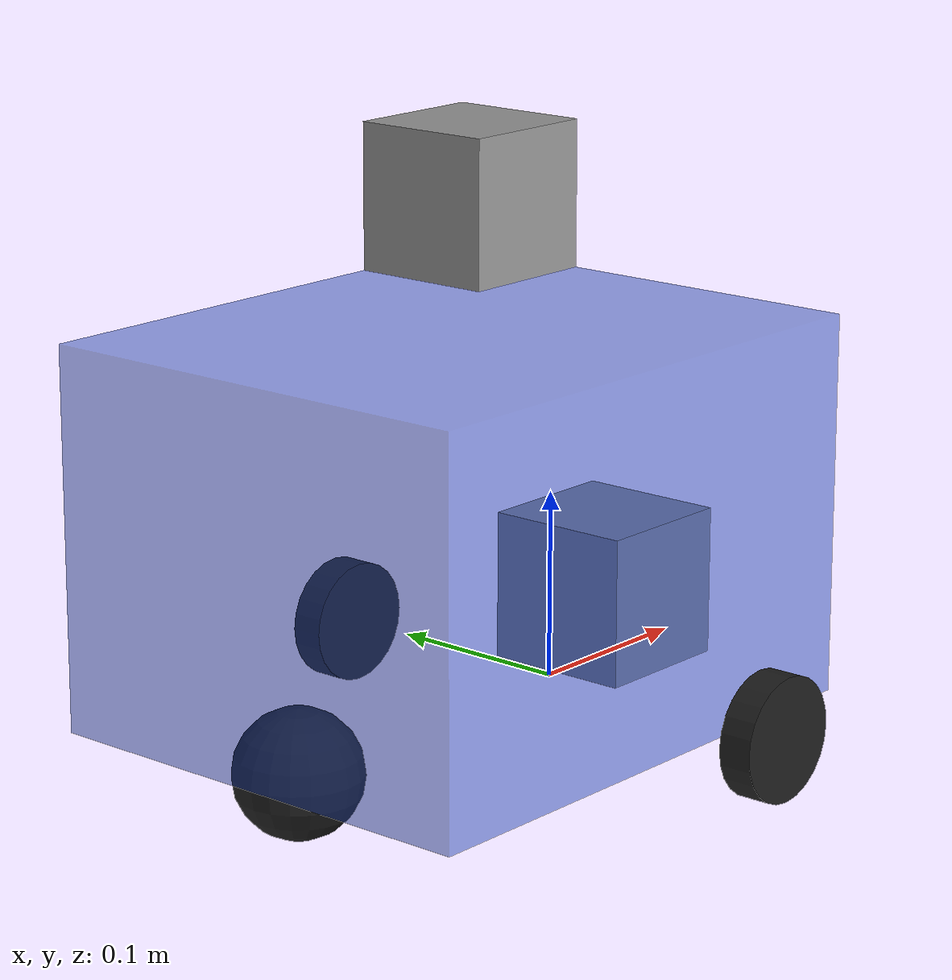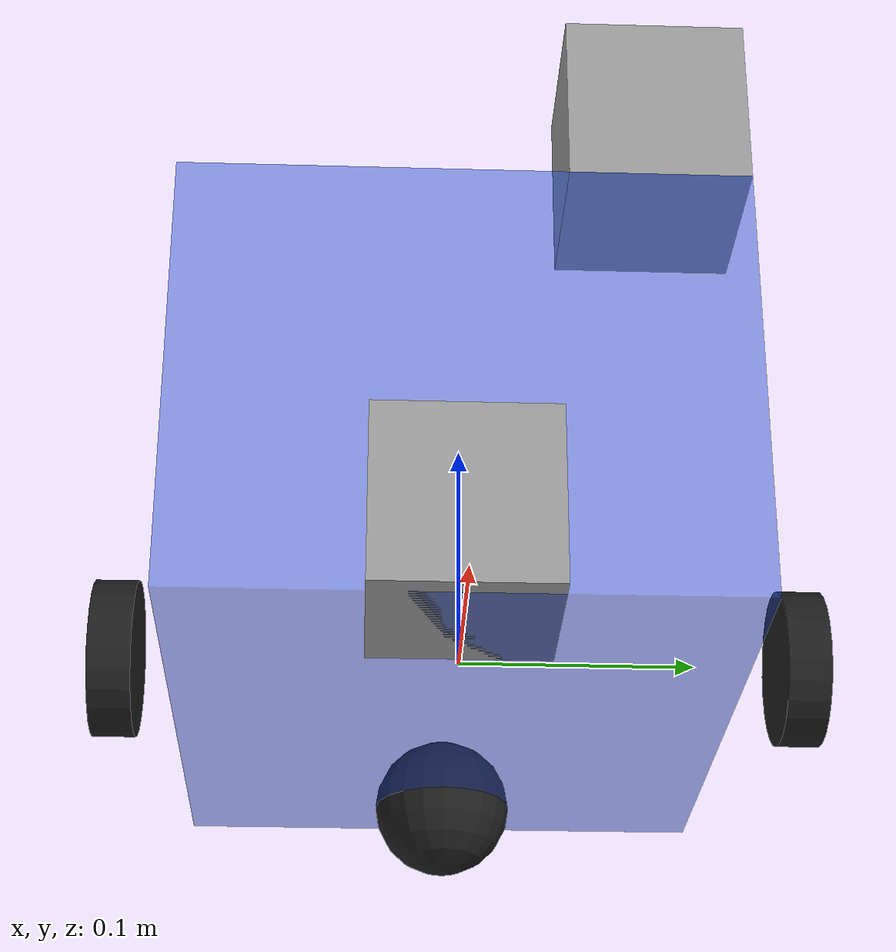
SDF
<sdf version='1.7'>
  <model name='simple_robot'>
    <link name='base_link'>
      <inertial>
        <pose>-0.051076 0.009526 0.02949 0 -0 0</pose>
        <mass>1.245</mass>
        <inertia>
          <ixx>0.0177944</ixx>
          <ixy>-0.00103094</ixy>
          <ixz>-0.00338644</ixz>
          <iyy>0.0227952</iyy>
          <iyz>-0.00252689</iyz>
          <izz>0.018595</izz>
        </inertia>
      </inertial>
      <collision name='base_link_fixed_joint_lump__chassis_collision'>
        <pose>-0.075 0 0.1 0 -0 0</pose>
        <geometry>
          <box>
            <size>0.3 0.25 0.2</size>
          </box>
        </geometry>
        <surface>
          <contact>
            <ode/>
          </contact>
          <friction>
            <ode/>
          </friction>
        </surface>
      </collision>
      <collision name='base_link_fixed_joint_lump__camera_link_collision_1'>
        <pose>0.035 0.085 0.24 0 -0 0</pose>
        <geometry>
          <box>
            <size>0.08 0.08 0.08</size>
          </box>
        </geometry>
        <surface>
          <contact>
            <ode/>
          </contact>
          <friction>
            <ode/>
          </friction>
        </surface>
      </collision>
      <collision name='base_link_fixed_joint_lump__camera_rgb_optical_frame_collision_2'>
        <pose>0.038 0.096 0.249 0 -0 0</pose>
        <geometry>
          <box>
            <size>0.01 0.01 0.01</size>
          </box>
        </geometry>
        <surface>
          <contact>
            <ode/>
          </contact>
          <friction>
            <ode/>
          </friction>
        </surface>
      </collision>
      <collision name='base_link_fixed_joint_lump__base_scan_collision_3'>
        <pose>0.045 0 0.04 0 -0 0</pose>
        <geometry>
          <box>
            <size>0.08 0.08 0.08</size>
          </box>
        </geometry>
        <surface>
          <contact>
            <ode/>
          </contact>
          <friction>
            <ode/>
          </friction>
        </surface>
      </collision>
      <collision name='base_link_fixed_joint_lump__castor_link_collision_4'>
        <pose>-0.192 0 0 0 -0 0</pose>
        <geometry>
          <sphere>
            <radius>0.033</radius>
          </sphere>
        </geometry>
        <surface>
          <contact>
            <ode/>
          </contact>
          <friction>
            <ode/>
          </friction>
        </surface>
      </collision>
      <visual name='base_link_fixed_joint_lump__chassis_visual'>
        <pose>-0.075 0 0.1 0 -0 0</pose>
        <geometry>
          <box>
            <size>0.3 0.25 0.2</size>
          </box>
        </geometry>
        <material>
          <script>
            <name>Gazebo/BlueTransparent</name>
            <uri>file://media/materials/scripts/gazebo.material</uri>
          </script>
        </material>
      </visual>
      <visual name='base_link_fixed_joint_lump__camera_link_visual_1'>
        <pose>0.035 0.085 0.24 0 -0 0</pose>
        <geometry>
          <box>
            <size>0.08 0.08 0.08</size>
          </box>
        </geometry>
        <material>
          <script>
            <name>Gazebo/Grey</name>
            <uri>file://media/materials/scripts/gazebo.material</uri>
          </script>
        </material>
      </visual>
      <visual name='base_link_fixed_joint_lump__camera_rgb_optical_frame_visual_2'>
        <pose>0.038 0.096 0.249 0 -0 0</pose>
        <geometry>
          <box>
            <size>0.01 0.01 0.01</size>
          </box>
        </geometry>
      </visual>
      <visual name='base_link_fixed_joint_lump__base_scan_visual_3'>
        <pose>0.045 0 0.04 0 -0 0</pose>
        <geometry>
          <box>
            <size>0.08 0.08 0.08</size>
          </box>
        </geometry>
        <material>
          <script>
            <name>Gazebo/Grey</name>
            <uri>file://media/materials/scripts/gazebo.material</uri>
          </script>
        </material>
      </visual>
      <visual name='base_link_fixed_joint_lump__castor_link_visual_4'>
        <pose>-0.192 0 0 0 -0 0</pose>
        <geometry>
          <sphere>
            <radius>0.033</radius>
          </sphere>
        </geometry>
        <material>
          <script>
            <name>Gazebo/Black</name>
            <uri>file://media/materials/scripts/gazebo.material</uri>
          </script>
        </material>
      </visual>
      <sensor name='camera' type='camera'>
        <always_on>1</always_on>
        <visualize>1</visualize>
        <update_rate>30</update_rate>
        <camera name='picam'>
          <horizontal_fov>1.0856</horizontal_fov>
          <image>
            <width>640</width>
            <height>480</height>
            <format>R8G8B8</format>
          </image>
          <clip>
            <near>0.03</near>
            <far>100</far>
          </clip>
          <noise>
            <type>gaussian</type>
            <mean>0</mean>
            <stddev>0.007</stddev>
          </noise>
        </camera>
        <plugin name='camera' filename='libgazebo_ros_camera.so'>
          <ros/>
        </plugin>
        <pose>0.038 0.096 0.249 0 -0 0</pose>
      </sensor>
      <sensor name='hls_lfcd_lds' type='ray'>
        <always_on>1</always_on>
        <visualize>1</visualize>
        <update_rate>5</update_rate>
        <ray>
          <scan>
            <horizontal>
              <samples>180</samples>
              <resolution>1</resolution>
              <min_angle>-1.5708</min_angle>
              <max_angle>1.5708</max_angle>
            </horizontal>
          </scan>
          <range>
            <min>0.12</min>
            <max>12</max>
            <resolution>0.015</resolution>
          </range>
          <noise>
            <type>gaussian</type>
            <mean>0</mean>
            <stddev>0.01</stddev>
          </noise>
        </ray>
        <plugin name='laserscanner' filename='libgazebo_ros_ray_sensor.so'>
          <ros>
            <remapping>~/out:=scan</remapping>
          </ros>
          <output_type>sensor_msgs/LaserScan</output_type>
          <frame_name>base_scan</frame_name>
        </plugin>
        <pose>0.085 0 0.04 0 -0 0</pose>
      </sensor>
      <surface>
        <friction>
          <ode>
            <mu>0.0001</mu>
            <mu2>0.0001</mu2>
            <fdir1>0 0 0</fdir1>
            <slip1>0.0</slip1>
            <slip2>0.0</slip2>
          </ode>
        </friction>
      </surface>
    </link>
    <joint name='wheel_left_joint' type='revolute'>
      <pose relative_to='base_link'>0 0.144 0 -1.5708 0 0</pose>
      <parent>base_link</parent>
      <child>wheel_left_link</child>
      <axis>
        <xyz>0 0 1</xyz>
        <limit>
          <lower>-1e+16</lower>
          <upper>1e+16</upper>
        </limit>
        <dynamics>
          <spring_reference>0</spring_reference>
          <spring_stiffness>0</spring_stiffness>
        </dynamics>
      </axis>
    </joint>
    <link name='wheel_left_link'>
      <pose relative_to='wheel_left_joint'>0 0 0 0 -0 0</pose>
      <inertial>
        <pose>0 0 0 0 -0 0</pose>
        <mass>0.0284989</mass>
        <inertia>
          <ixx>0.00181582</ixx>
          <ixy>-9.3392e-12</ixy>
          <ixz>1.04909e-11</ixz>
          <iyy>0.00329221</iyy>
          <iyz>5.75694e-11</iyz>
          <izz>0.00181582</izz>
        </inertia>
      </inertial>
      <collision name='wheel_left_link_collision'>
        <pose>0 0 0 0 -0 0</pose>
        <geometry>
          <cylinder>
            <length>0.018</length>
            <radius>0.033</radius>
          </cylinder>
        </geometry>
        <surface>
          <contact>
            <ode/>
          </contact>
          <friction>
            <ode/>
          </friction>
        </surface>
      </collision>
      <visual name='wheel_left_link_visual'>
        <pose>0 0 0 0 -0 0</pose>
        <geometry>
          <cylinder>
            <length>0.018</length>
            <radius>0.033</radius>
          </cylinder>
        </geometry>
        <material>
          <script>
            <name>Gazebo/Black</name>
            <uri>file://media/materials/scripts/gazebo.material</uri>
          </script>
        </material>
      </visual>
      <surface>
        <friction>
          <ode>
            <mu>100000</mu>
            <mu2>100000</mu2>
            <fdir1>0 0 0</fdir1>
            <slip1>0.0</slip1>
            <slip2>0.0</slip2>
          </ode>
        </friction>
        <contact>
          <ode>
            <soft_cfm>0</soft_cfm>
            <soft_erp>0.2</soft_erp>
            <kp>1e+5</kp>
            <kd>1</kd>
            <max_vel>0.01</max_vel>
            <min_depth>0.001</min_depth>
          </ode>
        </contact>
      </surface>
    </link>
    <joint name='wheel_right_joint' type='revolute'>
      <pose relative_to='base_link'>0 -0.144 0 1.5708 -0 0</pose>
      <parent>base_link</parent>
      <child>wheel_right_link</child>
      <axis>
        <xyz>0 0 -1</xyz>
        <limit>
          <lower>-1e+16</lower>
          <upper>1e+16</upper>
        </limit>
        <dynamics>
          <spring_reference>0</spring_reference>
          <spring_stiffness>0</spring_stiffness>
        </dynamics>
      </axis>
    </joint>
    <link name='wheel_right_link'>
      <pose relative_to='wheel_right_joint'>0 0 0 0 -0 0</pose>
      <inertial>
        <pose>0 0 0 0 -0 0</pose>
        <mass>0.0284989</mass>
        <inertia>
          <ixx>0.00181582</ixx>
          <ixy>-9.3392e-12</ixy>
          <ixz>1.04909e-11</ixz>
          <iyy>0.00329221</iyy>
          <iyz>5.75694e-11</iyz>
          <izz>0.00181582</izz>
        </inertia>
      </inertial>
      <collision name='wheel_right_link_collision'>
        <pose>0 0 0 0 -0 0</pose>
        <geometry>
          <cylinder>
            <length>0.018</length>
            <radius>0.033</radius>
          </cylinder>
        </geometry>
        <surface>
          <contact>
            <ode/>
          </contact>
          <friction>
            <ode/>
          </friction>
        </surface>
      </collision>
      <visual name='wheel_right_link_visual'>
        <pose>0 0 0 0 -0 0</pose>
        <geometry>
          <cylinder>
            <length>0.018</length>
            <radius>0.033</radius>
          </cylinder>
        </geometry>
        <material>
          <script>
            <name>Gazebo/Black</name>
            <uri>file://media/materials/scripts/gazebo.material</uri>
          </script>
        </material>
      </visual>
      <surface>
        <friction>
          <ode>
            <mu>100000</mu>
            <mu2>100000</mu2>
            <fdir1>0 0 0</fdir1>
            <slip1>0.0</slip1>
            <slip2>0.0</slip2>
          </ode>
        </friction>
        <contact>
          <ode>
            <soft_cfm>0</soft_cfm>
            <soft_erp>0.2</soft_erp>
            <kp>1e+5</kp>
            <kd>1</kd>
            <max_vel>0.01</max_vel>
            <min_depth>0.001</min_depth>
          </ode>
        </contact>
      </surface>
    </link>
    <static>0</static>
    <plugin name='diff_drive' filename='libgazebo_ros_diff_drive.so'>
      <ros/>
      <update_rate>30</update_rate>
      <left_joint>wheel_left_joint</left_joint>
      <right_joint>wheel_right_joint</right_joint>
      <wheel_separation>0.287</wheel_separation>
      <wheel_diameter>0.066</wheel_diameter>
      <max_wheel_torque>20</max_wheel_torque>
      <max_wheel_acceleration>1.0</max_wheel_acceleration>
      <command_topic>cmd_vel</command_topic>
      <publish_odom>1</publish_odom>
      <publish_odom_tf>1</publish_odom_tf>
      <publish_wheel_tf>0</publish_wheel_tf>
      <odometry_topic>odom</odometry_topic>
      <odometry_frame>odom</odometry_frame>
      <robot_base_frame>base_footprint</robot_base_frame>
    </plugin>
    <plugin name='joint_state' filename='libgazebo_ros_joint_state_publisher.so'>
      <ros>
        <remapping>~/out:=joint_states</remapping>
      </ros>
      <update_rate>30</update_rate>
      <joint_name>wheel_left_joint</joint_name>
      <joint_name>wheel_right_joint</joint_name>
    </plugin>
  </model>
</sdf>
